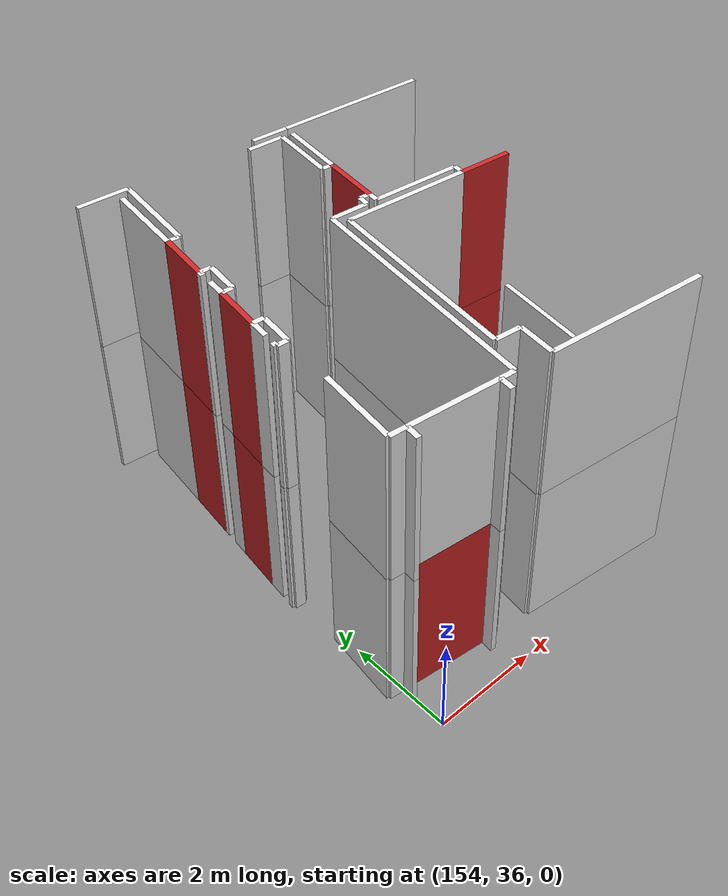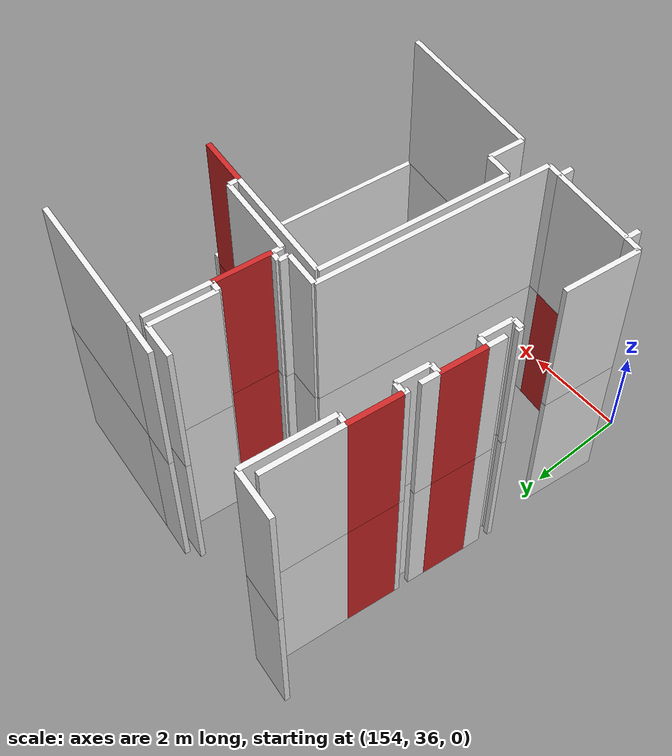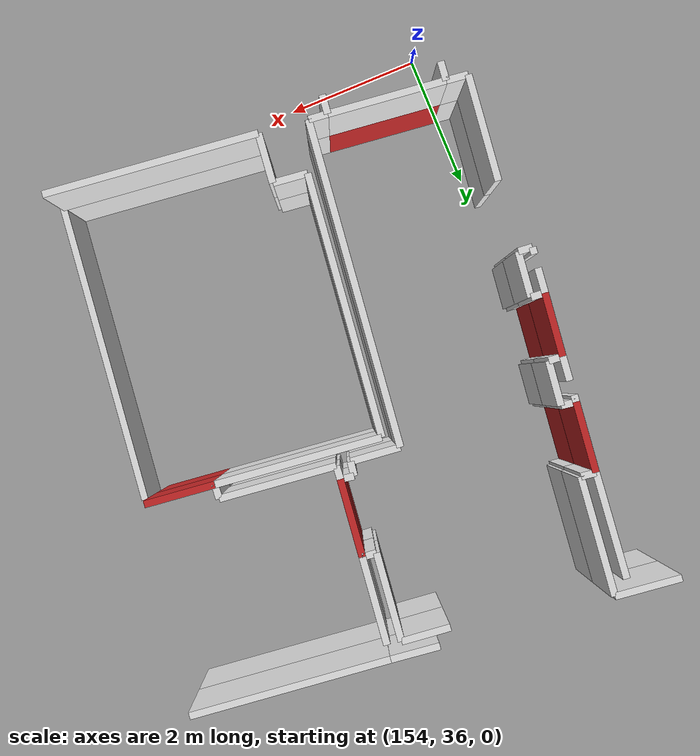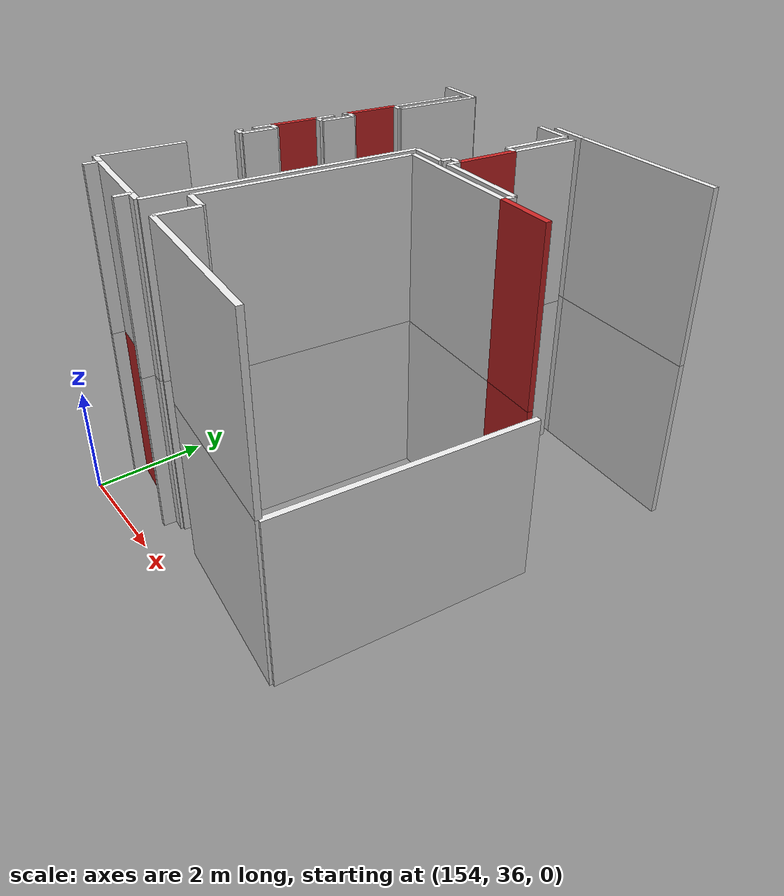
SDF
<sdf version="1.6">
 <world name="default">
  <model name="wall_154.0_40.6_1.5">
   <static>true</static>
   <pose>153.9649999999965 40.574999999953434 1.5 0 0 -1.693768196390317</pose>
   <link name="link">
    <visual name="visual">
     <geometry><box><size>0.8967719889926413 0.1 3</size></box></geometry>
     <material>
      <script><uri>file://media/materials/scripts/gazebo.material</uri><name>Gazebo/Red</name></script>
     </material>
    </visual>
    <collision name="collision"><geometry><box><size>0.8967719889926413 0.1 3</size></box></geometry></collision>
   </link>
  </model>
  <model name="wall_154.2_42.2_1.5">
   <static>true</static>
   <pose>154.15000000002328 42.15500000002794 1.5 0 0 -1.6914199953995817</pose>
   <link name="link">
    <visual name="visual">
     <geometry><box><size>0.997246208074735 0.1 3</size></box></geometry>
     <material>
      <script><uri>file://media/materials/scripts/gazebo.material</uri><name>Gazebo/Red</name></script>
     </material>
    </visual>
    <collision name="collision"><geometry><box><size>0.997246208074735 0.1 3</size></box></geometry></collision>
   </link>
  </model>
  <model name="wall_157.5_41.9_1.5">
   <static>true</static>
   <pose>157.51500000001397 41.94500000006519 1.5 0 0 -1.6895016639081246</pose>
   <link name="link">
    <visual name="visual">
     <geometry><box><size>1.0977249203199801 0.1 3</size></box></geometry>
     <material>
      <script><uri>file://media/materials/scripts/gazebo.material</uri><name>Gazebo/Red</name></script>
     </material>
    </visual>
    <collision name="collision"><geometry><box><size>1.0977249203199801 0.1 3</size></box></geometry></collision>
   </link>
  </model>
  <model name="wall_154.9_36.9_1.5">
   <static>true</static>
   <pose>154.86999999999534 36.85000000009313 1.5 0 0 -0.11990398547329398</pose>
   <link name="link">
    <visual name="visual">
     <geometry><box><size>1.6720047847367918 0.1 3</size></box></geometry>
     <material>
      <script><uri>file://media/materials/scripts/gazebo.material</uri><name>Gazebo/Red</name></script>
     </material>
    </visual>
    <collision name="collision"><geometry><box><size>1.6720047847367918 0.1 3</size></box></geometry></collision>
   </link>
  </model>
  <model name="wall_159.5_40.8_1.5">
   <static>true</static>
   <pose>159.5449999999837 40.75 1.5 0 0 -0.1206236686924795</pose>
   <link name="link">
    <visual name="visual">
     <geometry><box><size>0.9972462083198822 0.1 3</size></box></geometry>
     <material>
      <script><uri>file://media/materials/scripts/gazebo.material</uri><name>Gazebo/Red</name></script>
     </material>
    </visual>
    <collision name="collision"><geometry><box><size>0.9972462083198822 0.1 3</size></box></geometry></collision>
   </link>
  </model>
  <model name="wall_154.0_40.6_4.5">
   <static>true</static>
   <pose>153.9649999999965 40.574999999953434 4.5 0 0 -1.693768196390317</pose>
   <link name="link">
    <visual name="visual">
     <geometry><box><size>0.8967719889926413 0.1 3</size></box></geometry>
     <material>
      <script><uri>file://media/materials/scripts/gazebo.material</uri><name>Gazebo/Red</name></script>
     </material>
    </visual>
    <collision name="collision"><geometry><box><size>0.8967719889926413 0.1 3</size></box></geometry></collision>
   </link>
  </model>
  <model name="wall_154.2_42.2_4.5">
   <static>true</static>
   <pose>154.15000000002328 42.15500000002794 4.5 0 0 -1.6914199953995817</pose>
   <link name="link">
    <visual name="visual">
     <geometry><box><size>0.997246208074735 0.1 3</size></box></geometry>
     <material>
      <script><uri>file://media/materials/scripts/gazebo.material</uri><name>Gazebo/Red</name></script>
     </material>
    </visual>
    <collision name="collision"><geometry><box><size>0.997246208074735 0.1 3</size></box></geometry></collision>
   </link>
  </model>
  <model name="wall_157.5_41.9_4.5">
   <static>true</static>
   <pose>157.51500000001397 41.94500000006519 4.5 0 0 -1.6895016639081246</pose>
   <link name="link">
    <visual name="visual">
     <geometry><box><size>1.0977249203199801 0.1 3</size></box></geometry>
     <material>
      <script><uri>file://media/materials/scripts/gazebo.material</uri><name>Gazebo/Red</name></script>
     </material>
    </visual>
    <collision name="collision"><geometry><box><size>1.0977249203199801 0.1 3</size></box></geometry></collision>
   </link>
  </model>
  <model name="wall_159.5_40.8_4.5">
   <static>true</static>
   <pose>159.5449999999837 40.75 4.5 0 0 -0.1206236686924795</pose>
   <link name="link">
    <visual name="visual">
     <geometry><box><size>0.9972462083198822 0.1 3</size></box></geometry>
     <material>
      <script><uri>file://media/materials/scripts/gazebo.material</uri><name>Gazebo/Red</name></script>
     </material>
    </visual>
    <collision name="collision"><geometry><box><size>0.9972462083198822 0.1 3</size></box></geometry></collision>
   </link>
  </model>
  <model name="wall_153.8_39.5_1.5">
   <static>true</static>
   <pose>153.83500000002095 39.54000000003725 1.5 0 0 1.4711276738426837</pose>
   <link name="link">
    <visual name="visual">
     <geometry><box><size>0.10049875584145537 0.1 3</size></box></geometry>
     <material>
      <script><uri>file://media/materials/scripts/gazebo.material</uri><name>Gazebo/White</name></script>
     </material>
    </visual>
    <collision name="collision"><geometry><box><size>0.10049875584145537 0.1 3</size></box></geometry></collision>
   </link>
  </model>
  <model name="wall_154.0_41.2_1.5">
   <static>true</static>
   <pose>154.04000000000815 41.18999999994412 1.5 0 0 1.4536875822379653</pose>
   <link name="link">
    <visual name="visual">
     <geometry><box><size>0.34234485522203445 0.1 3</size></box></geometry>
     <material>
      <script><uri>file://media/materials/scripts/gazebo.material</uri><name>Gazebo/White</name></script>
     </material>
    </visual>
    <collision name="collision"><geometry><box><size>0.34234485522203445 0.1 3</size></box></geometry></collision>
   </link>
  </model>
  <model name="wall_153.9_40.0_1.5">
   <static>true</static>
   <pose>153.88999999998487 39.954999999841675 1.5 0 0 1.4570043197403058</pose>
   <link name="link">
    <visual name="visual">
     <geometry><box><size>0.35227829916632136 0.1 3</size></box></geometry>
     <material>
      <script><uri>file://media/materials/scripts/gazebo.material</uri><name>Gazebo/White</name></script>
     </material>
    </visual>
    <collision name="collision"><geometry><box><size>0.35227829916632136 0.1 3</size></box></geometry></collision>
   </link>
  </model>
  <model name="wall_159.2_43.8_1.5">
   <static>true</static>
   <pose>159.1700000000128 43.75 1.5 0 0 3.0216044435658165</pose>
   <link name="link">
    <visual name="visual">
     <geometry><box><size>2.840422503772646 0.1 3</size></box></geometry>
     <material>
      <script><uri>file://media/materials/scripts/gazebo.material</uri><name>Gazebo/White</name></script>
     </material>
    </visual>
    <collision name="collision"><geometry><box><size>2.840422503772646 0.1 3</size></box></geometry></collision>
   </link>
  </model>
  <model name="wall_157.4_44.0_1.5">
   <static>true</static>
   <pose>157.41500000000815 43.96499999985099 1.5 0 0 3.01189011664666</pose>
   <link name="link">
    <visual name="visual">
     <geometry><box><size>0.6958448102676278 0.1 3</size></box></geometry>
     <material>
      <script><uri>file://media/materials/scripts/gazebo.material</uri><name>Gazebo/White</name></script>
     </material>
    </visual>
    <collision name="collision"><geometry><box><size>0.6958448102676278 0.1 3</size></box></geometry></collision>
   </link>
  </model>
  <model name="wall_153.9_39.5_1.5">
   <static>true</static>
   <pose>153.93000000002212 39.480000000214204 1.5 0 0 -0.09966865257760905</pose>
   <link name="link">
    <visual name="visual">
     <geometry><box><size>0.20099751243585498 0.1 3</size></box></geometry>
     <material>
      <script><uri>file://media/materials/scripts/gazebo.material</uri><name>Gazebo/White</name></script>
     </material>
    </visual>
    <collision name="collision"><geometry><box><size>0.20099751243585498 0.1 3</size></box></geometry></collision>
   </link>
  </model>
  <model name="wall_154.1_39.8_1.5">
   <static>true</static>
   <pose>154.07000000000698 39.79000000003725 1.5 0 0 1.446441332248135</pose>
   <link name="link">
    <visual name="visual">
     <geometry><box><size>0.6449806195259987 0.1 3</size></box></geometry>
     <material>
      <script><uri>file://media/materials/scripts/gazebo.material</uri><name>Gazebo/White</name></script>
     </material>
    </visual>
    <collision name="collision"><geometry><box><size>0.6449806195259987 0.1 3</size></box></geometry></collision>
   </link>
  </model>
  <model name="wall_154.0_40.1_1.5">
   <static>true</static>
   <pose>154.0099999999802 40.11999999987893 1.5 0 0 3.0419240010121844</pose>
   <link name="link">
    <visual name="visual">
     <geometry><box><size>0.20099751243585498 0.1 3</size></box></geometry>
     <material>
      <script><uri>file://media/materials/scripts/gazebo.material</uri><name>Gazebo/White</name></script>
     </material>
    </visual>
    <collision name="collision"><geometry><box><size>0.20099751243585498 0.1 3</size></box></geometry></collision>
   </link>
  </model>
  <model name="wall_154.1_41.0_1.5">
   <static>true</static>
   <pose>154.11999999999534 41.01000000000931 1.5 0 0 -0.09966865260642473</pose>
   <link name="link">
    <visual name="visual">
     <geometry><box><size>0.20099751237793617 0.1 3</size></box></geometry>
     <material>
      <script><uri>file://media/materials/scripts/gazebo.material</uri><name>Gazebo/White</name></script>
     </material>
    </visual>
    <collision name="collision"><geometry><box><size>0.20099751237793617 0.1 3</size></box></geometry></collision>
   </link>
  </model>
  <model name="wall_154.3_41.3_1.5">
   <static>true</static>
   <pose>154.2599999999802 41.31499999994412 1.5 0 0 1.444488209684028</pose>
   <link name="link">
    <visual name="visual">
     <geometry><box><size>0.6350590522634818 0.1 3</size></box></geometry>
     <material>
      <script><uri>file://media/materials/scripts/gazebo.material</uri><name>Gazebo/White</name></script>
     </material>
    </visual>
    <collision name="collision"><geometry><box><size>0.6350590522634818 0.1 3</size></box></geometry></collision>
   </link>
  </model>
  <model name="wall_154.2_41.6_1.5">
   <static>true</static>
   <pose>154.19500000000698 41.64500000001863 1.5 0 0 2.999695597743866</pose>
   <link name="link">
    <visual name="visual">
     <geometry><box><size>0.21213203435596426 0.1 3</size></box></geometry>
     <material>
      <script><uri>file://media/materials/scripts/gazebo.material</uri><name>Gazebo/White</name></script>
     </material>
    </visual>
    <collision name="collision"><geometry><box><size>0.21213203435596426 0.1 3</size></box></geometry></collision>
   </link>
  </model>
  <model name="wall_154.3_42.6_1.5">
   <static>true</static>
   <pose>154.31500000000233 42.63500000000931 1.5 0 0 -0.14189705367284136</pose>
   <link name="link">
    <visual name="visual">
     <geometry><box><size>0.2121320342901098 0.1 3</size></box></geometry>
     <material>
      <script><uri>file://media/materials/scripts/gazebo.material</uri><name>Gazebo/White</name></script>
     </material>
    </visual>
    <collision name="collision"><geometry><box><size>0.2121320342901098 0.1 3</size></box></geometry></collision>
   </link>
  </model>
  <model name="wall_154.5_43.5_1.5">
   <static>true</static>
   <pose>154.51999999998952 43.45999999996275 1.5 0 0 1.4523063676091028</pose>
   <link name="link">
    <visual name="visual">
     <geometry><box><size>1.6918628783099707 0.1 3</size></box></geometry>
     <material>
      <script><uri>file://media/materials/scripts/gazebo.material</uri><name>Gazebo/White</name></script>
     </material>
    </visual>
    <collision name="collision"><geometry><box><size>1.6918628783099707 0.1 3</size></box></geometry></collision>
   </link>
  </model>
  <model name="wall_154.1_44.4_1.5">
   <static>true</static>
   <pose>154.14999999999418 44.359999999869615 1.5 0 0 3.0146198638590396</pose>
   <link name="link">
    <visual name="visual">
     <geometry><box><size>0.9476286192550325 0.1 3</size></box></geometry>
     <material>
      <script><uri>file://media/materials/scripts/gazebo.material</uri><name>Gazebo/White</name></script>
     </material>
    </visual>
    <collision name="collision"><geometry><box><size>0.9476286192550325 0.1 3</size></box></geometry></collision>
   </link>
  </model>
  <model name="wall_157.2_43.8_1.5">
   <static>true</static>
   <pose>157.18500000002678 43.79000000003725 1.5 0 0 -0.11542666047308585</pose>
   <link name="link">
    <visual name="visual">
     <geometry><box><size>0.6946221994833839 0.1 3</size></box></geometry>
     <material>
      <script><uri>file://media/materials/scripts/gazebo.material</uri><name>Gazebo/White</name></script>
     </material>
    </visual>
    <collision name="collision"><geometry><box><size>0.6946221994833839 0.1 3</size></box></geometry></collision>
   </link>
  </model>
  <model name="wall_157.5_43.1_1.5">
   <static>true</static>
   <pose>157.4550000000163 43.12999999988824 1.5 0 0 -1.6911791475924711</pose>
   <link name="link">
    <visual name="visual">
     <geometry><box><size>1.2490396313013081 0.1 3</size></box></geometry>
     <material>
      <script><uri>file://media/materials/scripts/gazebo.material</uri><name>Gazebo/White</name></script>
     </material>
    </visual>
    <collision name="collision"><geometry><box><size>1.2490396313013081 0.1 3</size></box></geometry></collision>
   </link>
  </model>
  <model name="wall_157.5_42.5_1.5">
   <static>true</static>
   <pose>157.48000000001048 42.5 1.5 0 0 -0.09966865027235515</pose>
   <link name="link">
    <visual name="visual">
     <geometry><box><size>0.20099751238951993 0.1 3</size></box></geometry>
     <material>
      <script><uri>file://media/materials/scripts/gazebo.material</uri><name>Gazebo/White</name></script>
     </material>
    </visual>
    <collision name="collision"><geometry><box><size>0.20099751238951993 0.1 3</size></box></geometry></collision>
   </link>
  </model>
  <model name="wall_157.4_41.4_1.5">
   <static>true</static>
   <pose>157.35500000001048 41.41500000003725 1.5 0 0 2.9849907752705747</pose>
   <link name="link">
    <visual name="visual">
     <geometry><box><size>0.19235384065968367 0.1 3</size></box></geometry>
     <material>
      <script><uri>file://media/materials/scripts/gazebo.material</uri><name>Gazebo/White</name></script>
     </material>
    </visual>
    <collision name="collision"><geometry><box><size>0.19235384065968367 0.1 3</size></box></geometry></collision>
   </link>
  </model>
  <model name="wall_157.2_41.3_1.5">
   <static>true</static>
   <pose>157.24499999999534 41.330000000074506 1.5 0 0 -1.719686274404394</pose>
   <link name="link">
    <visual name="visual">
     <geometry><box><size>0.20223748434991518 0.1 3</size></box></geometry>
     <material>
      <script><uri>file://media/materials/scripts/gazebo.material</uri><name>Gazebo/White</name></script>
     </material>
    </visual>
    <collision name="collision"><geometry><box><size>0.20223748434991518 0.1 3</size></box></geometry></collision>
   </link>
  </model>
  <model name="wall_156.9_41.3_1.5">
   <static>true</static>
   <pose>156.88000000000466 41.27000000001863 1.5 0 0 3.027800646333516</pose>
   <link name="link">
    <visual name="visual">
     <geometry><box><size>0.7045565981145364 0.1 3</size></box></geometry>
     <material>
      <script><uri>file://media/materials/scripts/gazebo.material</uri><name>Gazebo/White</name></script>
     </material>
    </visual>
    <collision name="collision"><geometry><box><size>0.7045565981145364 0.1 3</size></box></geometry></collision>
   </link>
  </model>
  <model name="wall_156.2_39.0_1.5">
   <static>true</static>
   <pose>156.25 39.015000000130385 1.5 0 0 -1.6922006861437495</pose>
   <link name="link">
    <visual name="visual">
     <geometry><box><size>4.624035034328207 0.1 3</size></box></geometry>
     <material>
      <script><uri>file://media/materials/scripts/gazebo.material</uri><name>Gazebo/White</name></script>
     </material>
    </visual>
    <collision name="collision"><geometry><box><size>4.624035034328207 0.1 3</size></box></geometry></collision>
   </link>
  </model>
  <model name="wall_155.8_36.7_1.5">
   <static>true</static>
   <pose>155.83499999999185 36.735000000102445 1.5 0 0 3.0309354331494087</pose>
   <link name="link">
    <visual name="visual">
     <geometry><box><size>0.271661554082157 0.1 3</size></box></geometry>
     <material>
      <script><uri>file://media/materials/scripts/gazebo.material</uri><name>Gazebo/White</name></script>
     </material>
    </visual>
    <collision name="collision"><geometry><box><size>0.271661554082157 0.1 3</size></box></geometry></collision>
   </link>
  </model>
  <model name="wall_153.9_37.0_1.5">
   <static>true</static>
   <pose>153.8849999999802 36.97000000020489 1.5 0 0 3.0132694257848427</pose>
   <link name="link">
    <visual name="visual">
     <geometry><box><size>0.31256999216421383 0.1 3</size></box></geometry>
     <material>
      <script><uri>file://media/materials/scripts/gazebo.material</uri><name>Gazebo/White</name></script>
     </material>
    </visual>
    <collision name="collision"><geometry><box><size>0.31256999216421383 0.1 3</size></box></geometry></collision>
   </link>
  </model>
  <model name="wall_153.8_37.7_1.5">
   <static>true</static>
   <pose>153.81999999997788 37.735000000102445 1.5 0 0 1.4505735401188582</pose>
   <link name="link">
    <visual name="visual">
     <geometry><box><size>1.5008331017391296 0.1 3</size></box></geometry>
     <material>
      <script><uri>file://media/materials/scripts/gazebo.material</uri><name>Gazebo/White</name></script>
     </material>
    </visual>
    <collision name="collision"><geometry><box><size>1.5008331017391296 0.1 3</size></box></geometry></collision>
   </link>
  </model>
  <model name="wall_156.7_37.0_1.5">
   <static>true</static>
   <pose>156.70999999999185 36.97999999998137 1.5 0 0 1.457004319658224</pose>
   <link name="link">
    <visual name="visual">
     <geometry><box><size>0.704556598339252 0.1 3</size></box></geometry>
     <material>
      <script><uri>file://media/materials/scripts/gazebo.material</uri><name>Gazebo/White</name></script>
     </material>
    </visual>
    <collision name="collision"><geometry><box><size>0.704556598339252 0.1 3</size></box></geometry></collision>
   </link>
  </model>
  <model name="wall_156.5_37.4_1.5">
   <static>true</static>
   <pose>156.50500000000466 37.360000000102445 1.5 0 0 3.019750216455228</pose>
   <link name="link">
    <visual name="visual">
     <geometry><box><size>0.4936598018854468 0.1 3</size></box></geometry>
     <material>
      <script><uri>file://media/materials/scripts/gazebo.material</uri><name>Gazebo/White</name></script>
     </material>
    </visual>
    <collision name="collision"><geometry><box><size>0.4936598018854468 0.1 3</size></box></geometry></collision>
   </link>
  </model>
  <model name="wall_156.5_39.2_1.5">
   <static>true</static>
   <pose>156.48500000001513 39.23999999999069 1.5 0 0 1.449769106973541</pose>
   <link name="link">
    <visual name="visual">
     <geometry><box><size>3.7272644121316296 0.1 3</size></box></geometry>
     <material>
      <script><uri>file://media/materials/scripts/gazebo.material</uri><name>Gazebo/White</name></script>
     </material>
    </visual>
    <collision name="collision"><geometry><box><size>3.7272644121316296 0.1 3</size></box></geometry></collision>
   </link>
  </model>
  <model name="wall_157.9_40.9_1.5">
   <static>true</static>
   <pose>157.88000000000466 40.949999999953434 1.5 0 0 -0.11909188516448511</pose>
   <link name="link">
    <visual name="visual">
     <geometry><box><size>2.3566925976318402 0.1 3</size></box></geometry>
     <material>
      <script><uri>file://media/materials/scripts/gazebo.material</uri><name>Gazebo/White</name></script>
     </material>
    </visual>
    <collision name="collision"><geometry><box><size>2.3566925976318402 0.1 3</size></box></geometry></collision>
   </link>
  </model>
  <model name="wall_160.0_38.5_1.5">
   <static>true</static>
   <pose>159.97000000000116 38.46999999997206 1.5 0 0 -1.6929129367175275</pose>
   <link name="link">
    <visual name="visual">
     <geometry><box><size>4.433012519625655 0.1 3</size></box></geometry>
     <material>
      <script><uri>file://media/materials/scripts/gazebo.material</uri><name>Gazebo/White</name></script>
     </material>
    </visual>
    <collision name="collision"><geometry><box><size>4.433012519625655 0.1 3</size></box></geometry></collision>
   </link>
  </model>
  <model name="wall_158.2_36.4_1.5">
   <static>true</static>
   <pose>158.18499999999767 36.449999999953434 1.5 0 0 3.0233351444942267</pose>
   <link name="link">
    <visual name="visual">
     <geometry><box><size>3.0513111935814474 0.1 3</size></box></geometry>
     <material>
      <script><uri>file://media/materials/scripts/gazebo.material</uri><name>Gazebo/White</name></script>
     </material>
    </visual>
    <collision name="collision"><geometry><box><size>3.0513111935814474 0.1 3</size></box></geometry></collision>
   </link>
  </model>
  <model name="wall_154.3_43.4_1.5">
   <static>true</static>
   <pose>154.2950000000128 43.39500000001863 1.5 0 0 -1.6843990475228636</pose>
   <link name="link">
    <visual name="visual">
     <geometry><box><size>1.4996666298416261 0.1 3</size></box></geometry>
     <material>
      <script><uri>file://media/materials/scripts/gazebo.material</uri><name>Gazebo/White</name></script>
     </material>
    </visual>
    <collision name="collision"><geometry><box><size>1.4996666298416261 0.1 3</size></box></geometry></collision>
   </link>
  </model>
  <model name="wall_154.1_41.6_1.5">
   <static>true</static>
   <pose>154.08500000002095 41.610000000102445 1.5 0 0 -1.6704649792860586</pose>
   <link name="link">
    <visual name="visual">
     <geometry><box><size>0.10049875630480566 0.1 3</size></box></geometry>
     <material>
      <script><uri>file://media/materials/scripts/gazebo.material</uri><name>Gazebo/White</name></script>
     </material>
    </visual>
    <collision name="collision"><geometry><box><size>0.10049875630480566 0.1 3</size></box></geometry></collision>
   </link>
  </model>
  <model name="wall_159.1_40.9_1.5">
   <static>true</static>
   <pose>159.05999999999767 40.90999999991618 1.5 0 0 1.471127674073209</pose>
   <link name="link">
    <visual name="visual">
     <geometry><box><size>0.20099751214626105 0.1 3</size></box></geometry>
     <material>
      <script><uri>file://media/materials/scripts/gazebo.material</uri><name>Gazebo/White</name></script>
     </material>
    </visual>
    <collision name="collision"><geometry><box><size>0.20099751214626105 0.1 3</size></box></geometry></collision>
   </link>
  </model>
  <model name="wall_158.2_41.1_1.5">
   <static>true</static>
   <pose>158.25 41.109999999869615 1.5 0 0 3.0202406529081416</pose>
   <link name="link">
    <visual name="visual">
     <geometry><box><size>1.6521501142814858 0.1 3</size></box></geometry>
     <material>
      <script><uri>file://media/materials/scripts/gazebo.material</uri><name>Gazebo/White</name></script>
     </material>
    </visual>
    <collision name="collision"><geometry><box><size>1.6521501142814858 0.1 3</size></box></geometry></collision>
   </link>
  </model>
  <model name="wall_157.4_41.3_1.5">
   <static>true</static>
   <pose>157.44000000000233 41.30499999993481 1.5 0 0 1.4659193879370842</pose>
   <link name="link">
    <visual name="visual">
     <geometry><box><size>0.19104973169180559 0.1 3</size></box></geometry>
     <material>
      <script><uri>file://media/materials/scripts/gazebo.material</uri><name>Gazebo/White</name></script>
     </material>
    </visual>
    <collision name="collision"><geometry><box><size>0.19104973169180559 0.1 3</size></box></geometry></collision>
   </link>
  </model>
  <model name="wall_157.7_43.1_1.5">
   <static>true</static>
   <pose>157.65499999999884 43.105000000214204 1.5 0 0 1.4494443262502912</pose>
   <link name="link">
    <visual name="visual">
     <geometry><box><size>1.2391125856610858 0.1 3</size></box></geometry>
     <material>
      <script><uri>file://media/materials/scripts/gazebo.material</uri><name>Gazebo/White</name></script>
     </material>
    </visual>
    <collision name="collision"><geometry><box><size>1.2391125856610858 0.1 3</size></box></geometry></collision>
   </link>
  </model>
  <model name="wall_154.0_36.8_1.5">
   <static>true</static>
   <pose>154.02499999999418 36.81500000017695 1.5 0 0 1.4601391057393092</pose>
   <link name="link">
    <visual name="visual">
     <geometry><box><size>0.2716615541592925 0.1 3</size></box></geometry>
     <material>
      <script><uri>file://media/materials/scripts/gazebo.material</uri><name>Gazebo/White</name></script>
     </material>
    </visual>
    <collision name="collision"><geometry><box><size>0.2716615541592925 0.1 3</size></box></geometry></collision>
   </link>
  </model>
  <model name="wall_155.7_36.6_1.5">
   <static>true</static>
   <pose>155.68499999999767 36.61499999999069 1.5 0 0 -1.681453548063439</pose>
   <link name="link">
    <visual name="visual">
     <geometry><box><size>0.27166155416572046 0.1 3</size></box></geometry>
     <material>
      <script><uri>file://media/materials/scripts/gazebo.material</uri><name>Gazebo/White</name></script>
     </material>
    </visual>
    <collision name="collision"><geometry><box><size>0.27166155416572046 0.1 3</size></box></geometry></collision>
   </link>
  </model>
  <model name="wall_153.8_39.5_4.5">
   <static>true</static>
   <pose>153.83500000002095 39.54000000003725 4.5 0 0 1.4711276738426837</pose>
   <link name="link">
    <visual name="visual">
     <geometry><box><size>0.10049875584145537 0.1 3</size></box></geometry>
     <material>
      <script><uri>file://media/materials/scripts/gazebo.material</uri><name>Gazebo/White</name></script>
     </material>
    </visual>
    <collision name="collision"><geometry><box><size>0.10049875584145537 0.1 3</size></box></geometry></collision>
   </link>
  </model>
  <model name="wall_154.0_41.2_4.5">
   <static>true</static>
   <pose>154.04000000000815 41.18999999994412 4.5 0 0 1.4536875822379653</pose>
   <link name="link">
    <visual name="visual">
     <geometry><box><size>0.34234485522203445 0.1 3</size></box></geometry>
     <material>
      <script><uri>file://media/materials/scripts/gazebo.material</uri><name>Gazebo/White</name></script>
     </material>
    </visual>
    <collision name="collision"><geometry><box><size>0.34234485522203445 0.1 3</size></box></geometry></collision>
   </link>
  </model>
  <model name="wall_153.9_40.0_4.5">
   <static>true</static>
   <pose>153.88999999998487 39.954999999841675 4.5 0 0 1.4570043197403058</pose>
   <link name="link">
    <visual name="visual">
     <geometry><box><size>0.35227829916632136 0.1 3</size></box></geometry>
     <material>
      <script><uri>file://media/materials/scripts/gazebo.material</uri><name>Gazebo/White</name></script>
     </material>
    </visual>
    <collision name="collision"><geometry><box><size>0.35227829916632136 0.1 3</size></box></geometry></collision>
   </link>
  </model>
  <model name="wall_159.2_43.8_4.5">
   <static>true</static>
   <pose>159.1700000000128 43.75 4.5 0 0 3.0216044435658165</pose>
   <link name="link">
    <visual name="visual">
     <geometry><box><size>2.840422503772646 0.1 3</size></box></geometry>
     <material>
      <script><uri>file://media/materials/scripts/gazebo.material</uri><name>Gazebo/White</name></script>
     </material>
    </visual>
    <collision name="collision"><geometry><box><size>2.840422503772646 0.1 3</size></box></geometry></collision>
   </link>
  </model>
  <model name="wall_157.4_44.0_4.5">
   <static>true</static>
   <pose>157.41500000000815 43.96499999985099 4.5 0 0 3.01189011664666</pose>
   <link name="link">
    <visual name="visual">
     <geometry><box><size>0.6958448102676278 0.1 3</size></box></geometry>
     <material>
      <script><uri>file://media/materials/scripts/gazebo.material</uri><name>Gazebo/White</name></script>
     </material>
    </visual>
    <collision name="collision"><geometry><box><size>0.6958448102676278 0.1 3</size></box></geometry></collision>
   </link>
  </model>
  <model name="wall_153.9_39.5_4.5">
   <static>true</static>
   <pose>153.93000000002212 39.480000000214204 4.5 0 0 -0.09966865257760905</pose>
   <link name="link">
    <visual name="visual">
     <geometry><box><size>0.20099751243585498 0.1 3</size></box></geometry>
     <material>
      <script><uri>file://media/materials/scripts/gazebo.material</uri><name>Gazebo/White</name></script>
     </material>
    </visual>
    <collision name="collision"><geometry><box><size>0.20099751243585498 0.1 3</size></box></geometry></collision>
   </link>
  </model>
  <model name="wall_154.1_39.8_4.5">
   <static>true</static>
   <pose>154.07000000000698 39.79000000003725 4.5 0 0 1.446441332248135</pose>
   <link name="link">
    <visual name="visual">
     <geometry><box><size>0.6449806195259987 0.1 3</size></box></geometry>
     <material>
      <script><uri>file://media/materials/scripts/gazebo.material</uri><name>Gazebo/White</name></script>
     </material>
    </visual>
    <collision name="collision"><geometry><box><size>0.6449806195259987 0.1 3</size></box></geometry></collision>
   </link>
  </model>
  <model name="wall_154.0_40.1_4.5">
   <static>true</static>
   <pose>154.0099999999802 40.11999999987893 4.5 0 0 3.0419240010121844</pose>
   <link name="link">
    <visual name="visual">
     <geometry><box><size>0.20099751243585498 0.1 3</size></box></geometry>
     <material>
      <script><uri>file://media/materials/scripts/gazebo.material</uri><name>Gazebo/White</name></script>
     </material>
    </visual>
    <collision name="collision"><geometry><box><size>0.20099751243585498 0.1 3</size></box></geometry></collision>
   </link>
  </model>
  <model name="wall_154.1_41.0_4.5">
   <static>true</static>
   <pose>154.11999999999534 41.01000000000931 4.5 0 0 -0.09966865260642473</pose>
   <link name="link">
    <visual name="visual">
     <geometry><box><size>0.20099751237793617 0.1 3</size></box></geometry>
     <material>
      <script><uri>file://media/materials/scripts/gazebo.material</uri><name>Gazebo/White</name></script>
     </material>
    </visual>
    <collision name="collision"><geometry><box><size>0.20099751237793617 0.1 3</size></box></geometry></collision>
   </link>
  </model>
  <model name="wall_154.3_41.3_4.5">
   <static>true</static>
   <pose>154.2599999999802 41.31499999994412 4.5 0 0 1.444488209684028</pose>
   <link name="link">
    <visual name="visual">
     <geometry><box><size>0.6350590522634818 0.1 3</size></box></geometry>
     <material>
      <script><uri>file://media/materials/scripts/gazebo.material</uri><name>Gazebo/White</name></script>
     </material>
    </visual>
    <collision name="collision"><geometry><box><size>0.6350590522634818 0.1 3</size></box></geometry></collision>
   </link>
  </model>
  <model name="wall_154.2_41.6_4.5">
   <static>true</static>
   <pose>154.19500000000698 41.64500000001863 4.5 0 0 2.999695597743866</pose>
   <link name="link">
    <visual name="visual">
     <geometry><box><size>0.21213203435596426 0.1 3</size></box></geometry>
     <material>
      <script><uri>file://media/materials/scripts/gazebo.material</uri><name>Gazebo/White</name></script>
     </material>
    </visual>
    <collision name="collision"><geometry><box><size>0.21213203435596426 0.1 3</size></box></geometry></collision>
   </link>
  </model>
  <model name="wall_154.3_42.6_4.5">
   <static>true</static>
   <pose>154.31500000000233 42.63500000000931 4.5 0 0 -0.14189705367284136</pose>
   <link name="link">
    <visual name="visual">
     <geometry><box><size>0.2121320342901098 0.1 3</size></box></geometry>
     <material>
      <script><uri>file://media/materials/scripts/gazebo.material</uri><name>Gazebo/White</name></script>
     </material>
    </visual>
    <collision name="collision"><geometry><box><size>0.2121320342901098 0.1 3</size></box></geometry></collision>
   </link>
  </model>
  <model name="wall_154.5_43.5_4.5">
   <static>true</static>
   <pose>154.51999999998952 43.45999999996275 4.5 0 0 1.4523063676091028</pose>
   <link name="link">
    <visual name="visual">
     <geometry><box><size>1.6918628783099707 0.1 3</size></box></geometry>
     <material>
      <script><uri>file://media/materials/scripts/gazebo.material</uri><name>Gazebo/White</name></script>
     </material>
    </visual>
    <collision name="collision"><geometry><box><size>1.6918628783099707 0.1 3</size></box></geometry></collision>
   </link>
  </model>
  <model name="wall_154.1_44.4_4.5">
   <static>true</static>
   <pose>154.14999999999418 44.359999999869615 4.5 0 0 3.0146198638590396</pose>
   <link name="link">
    <visual name="visual">
     <geometry><box><size>0.9476286192550325 0.1 3</size></box></geometry>
     <material>
      <script><uri>file://media/materials/scripts/gazebo.material</uri><name>Gazebo/White</name></script>
     </material>
    </visual>
    <collision name="collision"><geometry><box><size>0.9476286192550325 0.1 3</size></box></geometry></collision>
   </link>
  </model>
  <model name="wall_157.2_43.8_4.5">
   <static>true</static>
   <pose>157.18500000002678 43.79000000003725 4.5 0 0 -0.11542666047308585</pose>
   <link name="link">
    <visual name="visual">
     <geometry><box><size>0.6946221994833839 0.1 3</size></box></geometry>
     <material>
      <script><uri>file://media/materials/scripts/gazebo.material</uri><name>Gazebo/White</name></script>
     </material>
    </visual>
    <collision name="collision"><geometry><box><size>0.6946221994833839 0.1 3</size></box></geometry></collision>
   </link>
  </model>
  <model name="wall_157.5_43.1_4.5">
   <static>true</static>
   <pose>157.4550000000163 43.12999999988824 4.5 0 0 -1.6911791475924711</pose>
   <link name="link">
    <visual name="visual">
     <geometry><box><size>1.2490396313013081 0.1 3</size></box></geometry>
     <material>
      <script><uri>file://media/materials/scripts/gazebo.material</uri><name>Gazebo/White</name></script>
     </material>
    </visual>
    <collision name="collision"><geometry><box><size>1.2490396313013081 0.1 3</size></box></geometry></collision>
   </link>
  </model>
  <model name="wall_157.5_42.5_4.5">
   <static>true</static>
   <pose>157.48000000001048 42.5 4.5 0 0 -0.09966865027235515</pose>
   <link name="link">
    <visual name="visual">
     <geometry><box><size>0.20099751238951993 0.1 3</size></box></geometry>
     <material>
      <script><uri>file://media/materials/scripts/gazebo.material</uri><name>Gazebo/White</name></script>
     </material>
    </visual>
    <collision name="collision"><geometry><box><size>0.20099751238951993 0.1 3</size></box></geometry></collision>
   </link>
  </model>
  <model name="wall_157.4_41.4_4.5">
   <static>true</static>
   <pose>157.35500000001048 41.41500000003725 4.5 0 0 2.9849907752705747</pose>
   <link name="link">
    <visual name="visual">
     <geometry><box><size>0.19235384065968367 0.1 3</size></box></geometry>
     <material>
      <script><uri>file://media/materials/scripts/gazebo.material</uri><name>Gazebo/White</name></script>
     </material>
    </visual>
    <collision name="collision"><geometry><box><size>0.19235384065968367 0.1 3</size></box></geometry></collision>
   </link>
  </model>
  <model name="wall_157.2_41.3_4.5">
   <static>true</static>
   <pose>157.24499999999534 41.330000000074506 4.5 0 0 -1.719686274404394</pose>
   <link name="link">
    <visual name="visual">
     <geometry><box><size>0.20223748434991518 0.1 3</size></box></geometry>
     <material>
      <script><uri>file://media/materials/scripts/gazebo.material</uri><name>Gazebo/White</name></script>
     </material>
    </visual>
    <collision name="collision"><geometry><box><size>0.20223748434991518 0.1 3</size></box></geometry></collision>
   </link>
  </model>
  <model name="wall_156.9_41.3_4.5">
   <static>true</static>
   <pose>156.88000000000466 41.27000000001863 4.5 0 0 3.027800646333516</pose>
   <link name="link">
    <visual name="visual">
     <geometry><box><size>0.7045565981145364 0.1 3</size></box></geometry>
     <material>
      <script><uri>file://media/materials/scripts/gazebo.material</uri><name>Gazebo/White</name></script>
     </material>
    </visual>
    <collision name="collision"><geometry><box><size>0.7045565981145364 0.1 3</size></box></geometry></collision>
   </link>
  </model>
  <model name="wall_156.2_39.0_4.5">
   <static>true</static>
   <pose>156.25 39.015000000130385 4.5 0 0 -1.6922006861437495</pose>
   <link name="link">
    <visual name="visual">
     <geometry><box><size>4.624035034328207 0.1 3</size></box></geometry>
     <material>
      <script><uri>file://media/materials/scripts/gazebo.material</uri><name>Gazebo/White</name></script>
     </material>
    </visual>
    <collision name="collision"><geometry><box><size>4.624035034328207 0.1 3</size></box></geometry></collision>
   </link>
  </model>
  <model name="wall_155.8_36.7_4.5">
   <static>true</static>
   <pose>155.83499999999185 36.735000000102445 4.5 0 0 3.0309354331494087</pose>
   <link name="link">
    <visual name="visual">
     <geometry><box><size>0.271661554082157 0.1 3</size></box></geometry>
     <material>
      <script><uri>file://media/materials/scripts/gazebo.material</uri><name>Gazebo/White</name></script>
     </material>
    </visual>
    <collision name="collision"><geometry><box><size>0.271661554082157 0.1 3</size></box></geometry></collision>
   </link>
  </model>
  <model name="wall_154.9_36.9_4.5">
   <static>true</static>
   <pose>154.86999999999534 36.85000000009313 4.5 0 0 3.021688668116499</pose>
   <link name="link">
    <visual name="visual">
     <geometry><box><size>1.6720047847367918 0.1 3</size></box></geometry>
     <material>
      <script><uri>file://media/materials/scripts/gazebo.material</uri><name>Gazebo/White</name></script>
     </material>
    </visual>
    <collision name="collision"><geometry><box><size>1.6720047847367918 0.1 3</size></box></geometry></collision>
   </link>
  </model>
  <model name="wall_153.9_37.0_4.5">
   <static>true</static>
   <pose>153.8849999999802 36.97000000020489 4.5 0 0 3.0132694257848427</pose>
   <link name="link">
    <visual name="visual">
     <geometry><box><size>0.31256999216421383 0.1 3</size></box></geometry>
     <material>
      <script><uri>file://media/materials/scripts/gazebo.material</uri><name>Gazebo/White</name></script>
     </material>
    </visual>
    <collision name="collision"><geometry><box><size>0.31256999216421383 0.1 3</size></box></geometry></collision>
   </link>
  </model>
  <model name="wall_153.8_37.7_4.5">
   <static>true</static>
   <pose>153.81999999997788 37.735000000102445 4.5 0 0 1.4505735401188582</pose>
   <link name="link">
    <visual name="visual">
     <geometry><box><size>1.5008331017391296 0.1 3</size></box></geometry>
     <material>
      <script><uri>file://media/materials/scripts/gazebo.material</uri><name>Gazebo/White</name></script>
     </material>
    </visual>
    <collision name="collision"><geometry><box><size>1.5008331017391296 0.1 3</size></box></geometry></collision>
   </link>
  </model>
  <model name="wall_156.7_37.0_4.5">
   <static>true</static>
   <pose>156.70999999999185 36.97999999998137 4.5 0 0 1.457004319658224</pose>
   <link name="link">
    <visual name="visual">
     <geometry><box><size>0.704556598339252 0.1 3</size></box></geometry>
     <material>
      <script><uri>file://media/materials/scripts/gazebo.material</uri><name>Gazebo/White</name></script>
     </material>
    </visual>
    <collision name="collision"><geometry><box><size>0.704556598339252 0.1 3</size></box></geometry></collision>
   </link>
  </model>
  <model name="wall_156.5_37.4_4.5">
   <static>true</static>
   <pose>156.50500000000466 37.360000000102445 4.5 0 0 3.019750216455228</pose>
   <link name="link">
    <visual name="visual">
     <geometry><box><size>0.4936598018854468 0.1 3</size></box></geometry>
     <material>
      <script><uri>file://media/materials/scripts/gazebo.material</uri><name>Gazebo/White</name></script>
     </material>
    </visual>
    <collision name="collision"><geometry><box><size>0.4936598018854468 0.1 3</size></box></geometry></collision>
   </link>
  </model>
  <model name="wall_156.5_39.2_4.5">
   <static>true</static>
   <pose>156.48500000001513 39.23999999999069 4.5 0 0 1.449769106973541</pose>
   <link name="link">
    <visual name="visual">
     <geometry><box><size>3.7272644121316296 0.1 3</size></box></geometry>
     <material>
      <script><uri>file://media/materials/scripts/gazebo.material</uri><name>Gazebo/White</name></script>
     </material>
    </visual>
    <collision name="collision"><geometry><box><size>3.7272644121316296 0.1 3</size></box></geometry></collision>
   </link>
  </model>
  <model name="wall_157.9_40.9_4.5">
   <static>true</static>
   <pose>157.88000000000466 40.949999999953434 4.5 0 0 -0.11909188516448511</pose>
   <link name="link">
    <visual name="visual">
     <geometry><box><size>2.3566925976318402 0.1 3</size></box></geometry>
     <material>
      <script><uri>file://media/materials/scripts/gazebo.material</uri><name>Gazebo/White</name></script>
     </material>
    </visual>
    <collision name="collision"><geometry><box><size>2.3566925976318402 0.1 3</size></box></geometry></collision>
   </link>
  </model>
  <model name="wall_158.2_36.4_4.5">
   <static>true</static>
   <pose>158.18499999999767 36.449999999953434 4.5 0 0 3.0233351444942267</pose>
   <link name="link">
    <visual name="visual">
     <geometry><box><size>3.0513111935814474 0.1 3</size></box></geometry>
     <material>
      <script><uri>file://media/materials/scripts/gazebo.material</uri><name>Gazebo/White</name></script>
     </material>
    </visual>
    <collision name="collision"><geometry><box><size>3.0513111935814474 0.1 3</size></box></geometry></collision>
   </link>
  </model>
  <model name="wall_154.3_43.4_4.5">
   <static>true</static>
   <pose>154.2950000000128 43.39500000001863 4.5 0 0 -1.6843990475228636</pose>
   <link name="link">
    <visual name="visual">
     <geometry><box><size>1.4996666298416261 0.1 3</size></box></geometry>
     <material>
      <script><uri>file://media/materials/scripts/gazebo.material</uri><name>Gazebo/White</name></script>
     </material>
    </visual>
    <collision name="collision"><geometry><box><size>1.4996666298416261 0.1 3</size></box></geometry></collision>
   </link>
  </model>
  <model name="wall_154.1_41.6_4.5">
   <static>true</static>
   <pose>154.08500000002095 41.610000000102445 4.5 0 0 -1.6704649792860586</pose>
   <link name="link">
    <visual name="visual">
     <geometry><box><size>0.10049875630480566 0.1 3</size></box></geometry>
     <material>
      <script><uri>file://media/materials/scripts/gazebo.material</uri><name>Gazebo/White</name></script>
     </material>
    </visual>
    <collision name="collision"><geometry><box><size>0.10049875630480566 0.1 3</size></box></geometry></collision>
   </link>
  </model>
  <model name="wall_159.1_40.9_4.5">
   <static>true</static>
   <pose>159.05999999999767 40.90999999991618 4.5 0 0 1.471127674073209</pose>
   <link name="link">
    <visual name="visual">
     <geometry><box><size>0.20099751214626105 0.1 3</size></box></geometry>
     <material>
      <script><uri>file://media/materials/scripts/gazebo.material</uri><name>Gazebo/White</name></script>
     </material>
    </visual>
    <collision name="collision"><geometry><box><size>0.20099751214626105 0.1 3</size></box></geometry></collision>
   </link>
  </model>
  <model name="wall_158.2_41.1_4.5">
   <static>true</static>
   <pose>158.25 41.109999999869615 4.5 0 0 3.0202406529081416</pose>
   <link name="link">
    <visual name="visual">
     <geometry><box><size>1.6521501142814858 0.1 3</size></box></geometry>
     <material>
      <script><uri>file://media/materials/scripts/gazebo.material</uri><name>Gazebo/White</name></script>
     </material>
    </visual>
    <collision name="collision"><geometry><box><size>1.6521501142814858 0.1 3</size></box></geometry></collision>
   </link>
  </model>
  <model name="wall_157.4_41.3_4.5">
   <static>true</static>
   <pose>157.44000000000233 41.30499999993481 4.5 0 0 1.4659193879370842</pose>
   <link name="link">
    <visual name="visual">
     <geometry><box><size>0.19104973169180559 0.1 3</size></box></geometry>
     <material>
      <script><uri>file://media/materials/scripts/gazebo.material</uri><name>Gazebo/White</name></script>
     </material>
    </visual>
    <collision name="collision"><geometry><box><size>0.19104973169180559 0.1 3</size></box></geometry></collision>
   </link>
  </model>
  <model name="wall_157.7_43.1_4.5">
   <static>true</static>
   <pose>157.65499999999884 43.105000000214204 4.5 0 0 1.4494443262502912</pose>
   <link name="link">
    <visual name="visual">
     <geometry><box><size>1.2391125856610858 0.1 3</size></box></geometry>
     <material>
      <script><uri>file://media/materials/scripts/gazebo.material</uri><name>Gazebo/White</name></script>
     </material>
    </visual>
    <collision name="collision"><geometry><box><size>1.2391125856610858 0.1 3</size></box></geometry></collision>
   </link>
  </model>
  <model name="wall_154.0_36.8_4.5">
   <static>true</static>
   <pose>154.02499999999418 36.81500000017695 4.5 0 0 1.4601391057393092</pose>
   <link name="link">
    <visual name="visual">
     <geometry><box><size>0.2716615541592925 0.1 3</size></box></geometry>
     <material>
      <script><uri>file://media/materials/scripts/gazebo.material</uri><name>Gazebo/White</name></script>
     </material>
    </visual>
    <collision name="collision"><geometry><box><size>0.2716615541592925 0.1 3</size></box></geometry></collision>
   </link>
  </model>
  <model name="wall_155.7_36.6_4.5">
   <static>true</static>
   <pose>155.68499999999767 36.61499999999069 4.5 0 0 -1.681453548063439</pose>
   <link name="link">
    <visual name="visual">
     <geometry><box><size>0.27166155416572046 0.1 3</size></box></geometry>
     <material>
      <script><uri>file://media/materials/scripts/gazebo.material</uri><name>Gazebo/White</name></script>
     </material>
    </visual>
    <collision name="collision"><geometry><box><size>0.27166155416572046 0.1 3</size></box></geometry></collision>
   </link>
  </model>
 </world>
</sdf>
